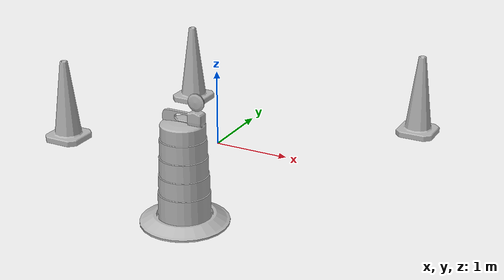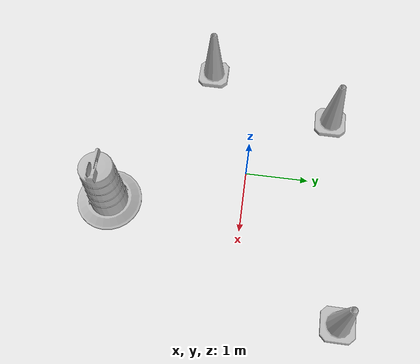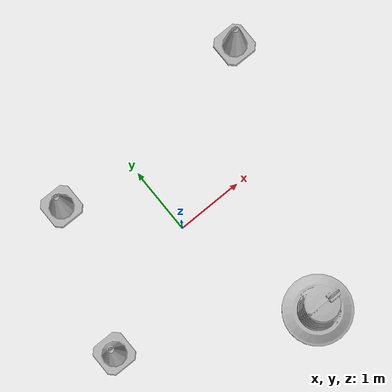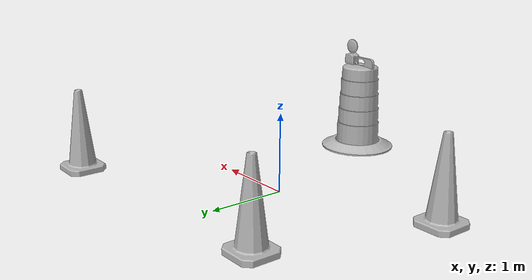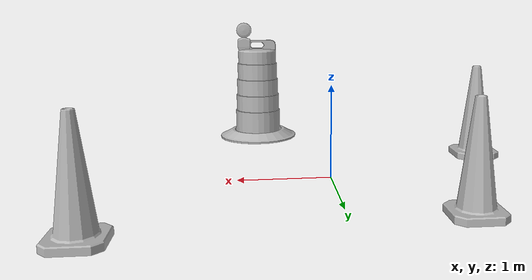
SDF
<?xml version='1.0'?>
<sdf version='1.7'>
  <model name='obstacle'>
    <model name='Construction Barrel'>
      <link name='link'>
        <inertial>
          <pose>0 0 0.4 0 -0 0</pose>
          <mass>500</mass>
          <inertia>
            <ixx>51.2096</ixx>
            <iyy>51.2096</iyy>
            <izz>25</izz>
            <ixy>0</ixy>
            <ixz>0</ixz>
            <iyz>0</iyz>
          </inertia>
        </inertial>
        <collision name='collision'>
          <geometry>
            <mesh>
              <uri>model://construction_barrel/meshes/construction_barrel.dae</uri>
            </mesh>
          </geometry>
        </collision>
        <visual name='visual'>
          <geometry>
            <mesh>
              <uri>model://construction_barrel/meshes/construction_barrel.dae</uri>
            </mesh>
          </geometry>
        </visual>
      </link>
      <pose>0.748974 -2.09748 0 0 -0 0</pose>
    </model>
    <model name='Construction Cone'>
      <link name='link'>
        <collision name='collision'>
          <geometry>
            <mesh>
              <scale>10 10 10</scale>
              <uri>model://construction_cone/meshes/construction_cone.dae</uri>
            </mesh>
          </geometry>
        </collision>
        <visual name='visual'>
          <geometry>
            <mesh>
              <scale>10 10 10</scale>
              <uri>model://construction_cone/meshes/construction_cone.dae</uri>
            </mesh>
          </geometry>
        </visual>
      </link>
      <pose>-1.1305 1.30662 0 0 -0 0</pose>
    </model>
    <model name='Construction Cone_0'>
      <link name='link'>
        <collision name='collision'>
          <geometry>
            <mesh>
              <scale>10 10 10</scale>
              <uri>model://construction_cone/meshes/construction_cone.dae</uri>
            </mesh>
          </geometry>
        </collision>
        <visual name='visual'>
          <geometry>
            <mesh>
              <scale>10 10 10</scale>
              <uri>model://construction_cone/meshes/construction_cone.dae</uri>
            </mesh>
          </geometry>
        </visual>
      </link>
      <pose>-1.84815 -0.777303 0 0 -0 0</pose>
    </model>
    <model name='Construction Cone_1'>
      <link name='link'>
        <collision name='collision'>
          <geometry>
            <mesh>
              <scale>10 10 10</scale>
              <uri>model://construction_cone/meshes/construction_cone.dae</uri>
            </mesh>
          </geometry>
        </collision>
        <visual name='visual'>
          <geometry>
            <mesh>
              <scale>10 10 10</scale>
              <uri>model://construction_cone/meshes/construction_cone.dae</uri>
            </mesh>
          </geometry>
        </visual>
      </link>
      <pose>2.22967 1.56816 0 0 -0 0</pose>
    </model>
    <static>0</static>
    <allow_auto_disable>1</allow_auto_disable>
  </model>
</sdf>
